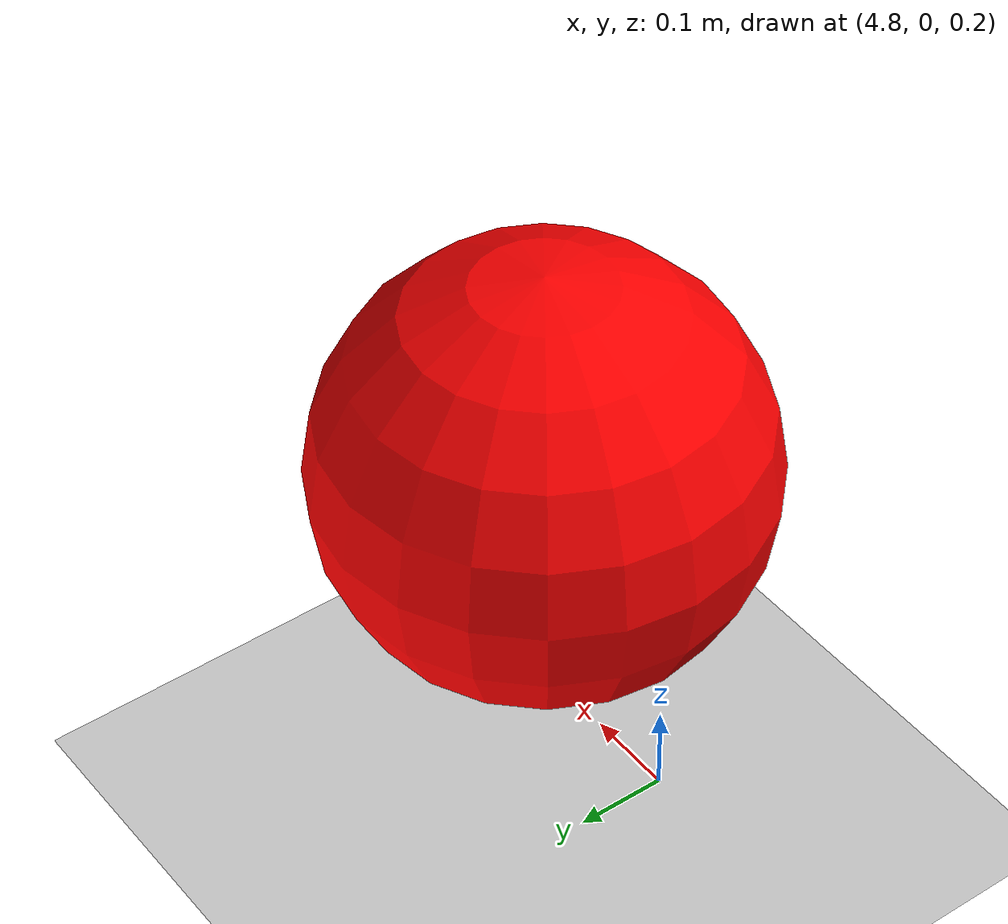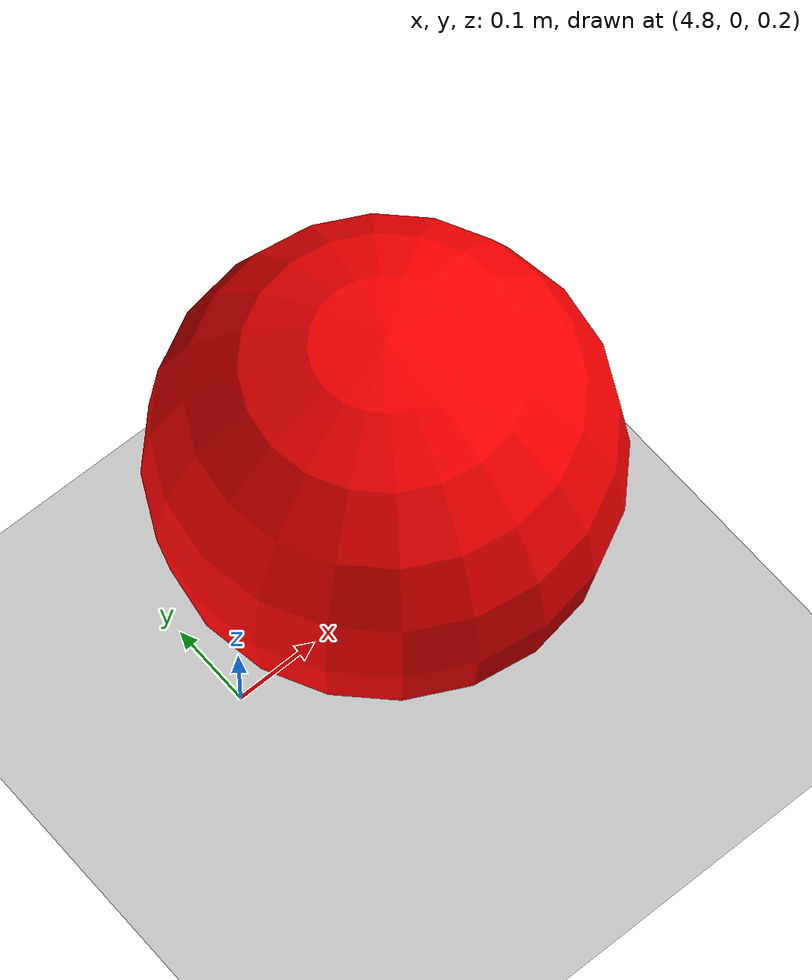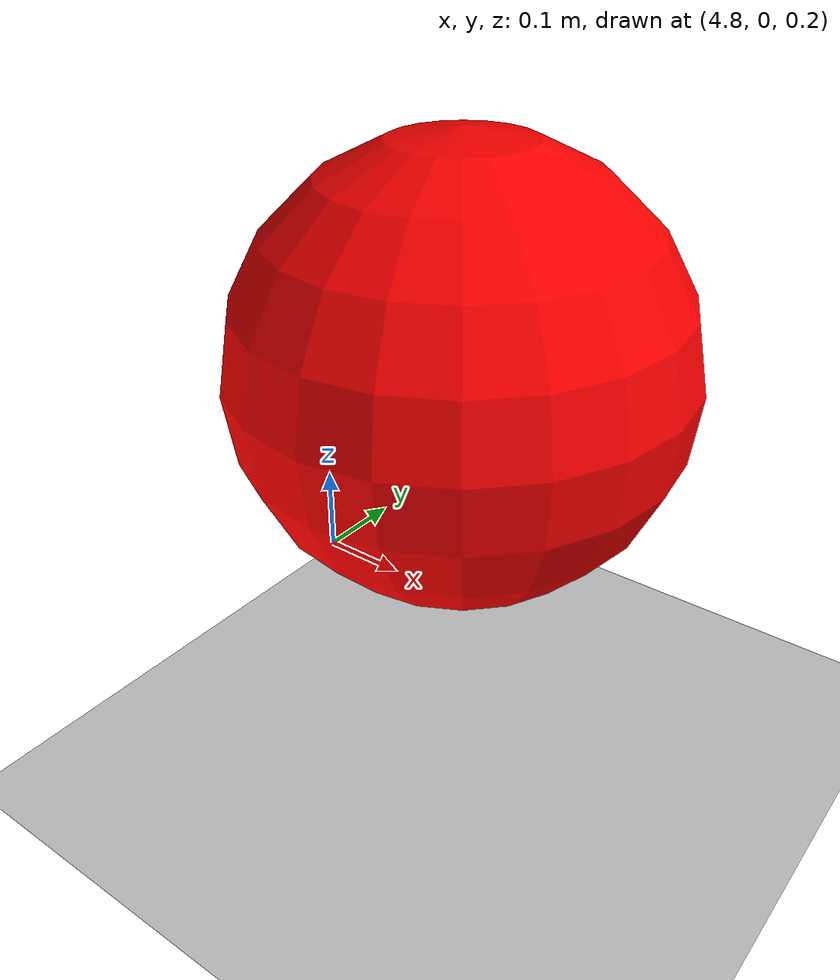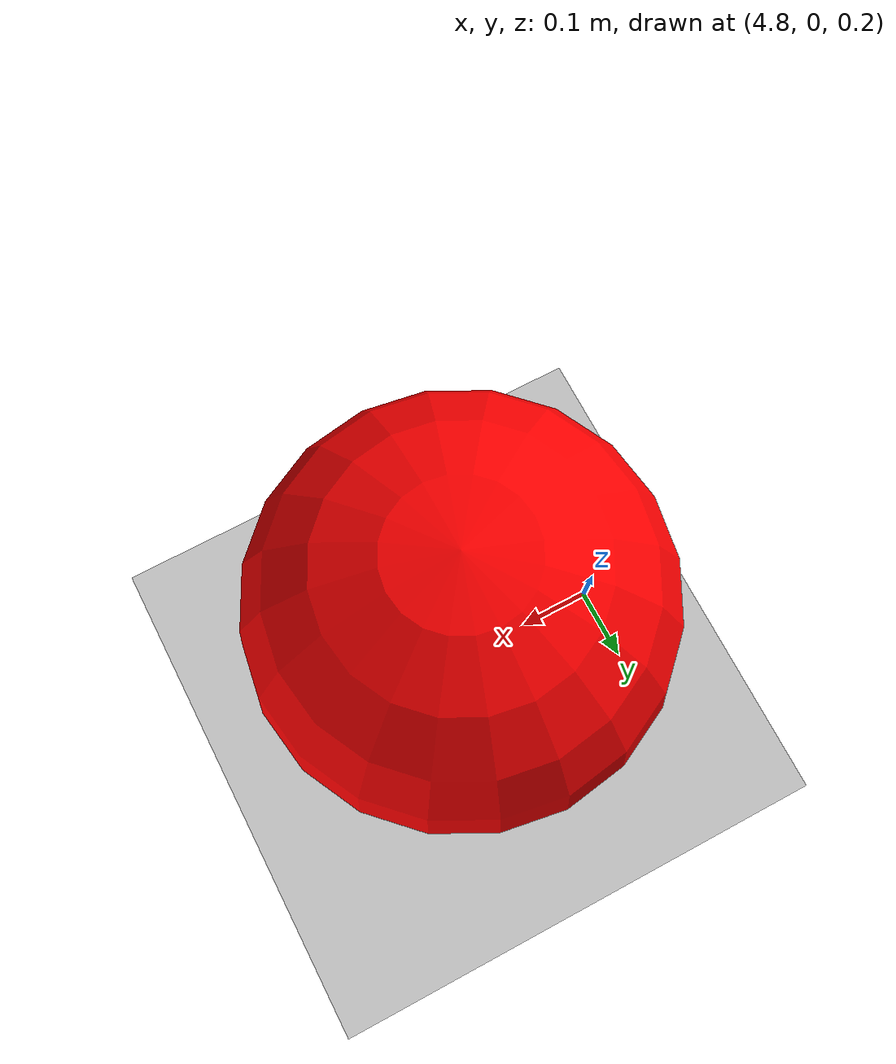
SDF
<?xml version="1.0" ?>
<sdf version="1.9">
  <world name="tracking_world">
    <physics name="1ms" type="ignored">
      <max_step_size>0.001</max_step_size>
      <real_time_factor>1.0</real_time_factor>
      <real_time_update_rate>1000.0</real_time_update_rate>
    </physics>

    <plugin
      filename="gz-sim-physics-system"
      name="gz::sim::systems::Physics">
    </plugin>
    <plugin
      filename="gz-sim-sensors-system"
      name="gz::sim::systems::Sensors">
    </plugin>
    <plugin
      filename="gz-sim-user-commands-system"
      name="gz::sim::systems::UserCommands">
    </plugin>
    <plugin
      filename="gz-sim-scene-broadcaster-system"
      name="gz::sim::systems::SceneBroadcaster">
    </plugin>

    <light name="sun" type="directional">
      <cast_shadows>true</cast_shadows>
      <pose>0 0 10 0 0 0</pose>
      <diffuse>0.8 0.8 0.8 1</diffuse>
      <specular>0.2 0.2 0.2 1</specular>
      <direction>-0.5 0.1 -0.9</direction>
    </light>

    <model name="ground_plane">
      <static>true</static>
      <link name="link">
        <collision name="collision">
          <geometry>
            <plane>
              <normal>0 0 1</normal>
              <size>100 100</size>
            </plane>
          </geometry>
        </collision>
        <visual name="visual">
          <geometry>
            <plane>
              <normal>0 0 1</normal>
              <size>100 100</size>
            </plane>
          </geometry>
          <material>
            <ambient>0.8 0.8 0.8 1</ambient>
            <diffuse>0.8 0.8 0.8 1</diffuse>
            <specular>0.8 0.8 0.8 1</specular>
          </material>
        </visual>
      </link>
    </model>

    <model name="tracking_target">
      <pose>5 0 0.5 0 0 0</pose>
      <link name="link">
        <inertial>
          <mass>1.0</mass>
          <inertia>
            <ixx>0.1</ixx>
            <ixy>0</ixy>
            <ixz>0</ixz>
            <iyy>0.1</iyy>
            <iyz>0</iyz>
            <izz>0.1</izz>
          </inertia>
        </inertial>
        <collision name="collision">
          <geometry>
            <sphere>
              <radius>0.25</radius>
            </sphere>
          </geometry>
        </collision>
        <visual name="visual">
          <geometry>
            <sphere>
              <radius>0.25</radius>
            </sphere>
          </geometry>
          <material>
            <ambient>1 0 0 1</ambient>
            <diffuse>1 0 0 1</diffuse>
            <specular>1 0 0 1</specular>
          </material>
        </visual>
      </link>
    </model>
  </world>
</sdf>
